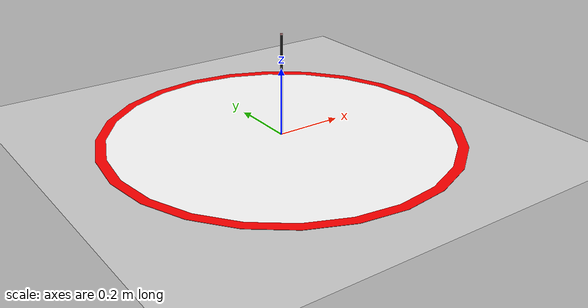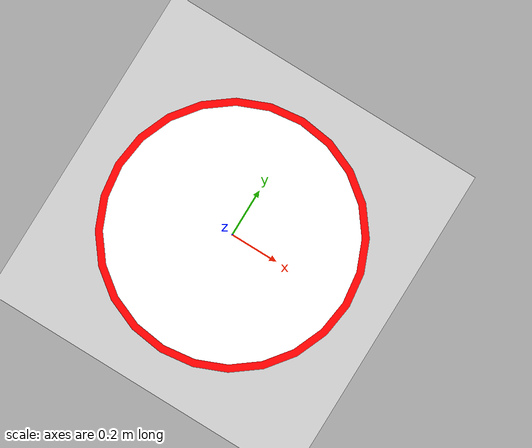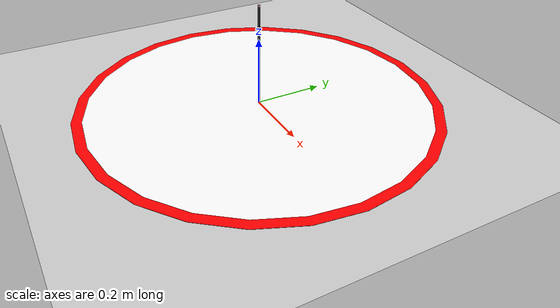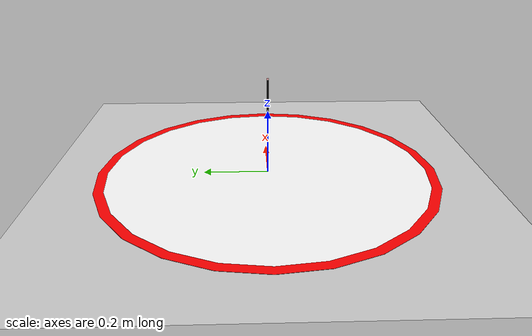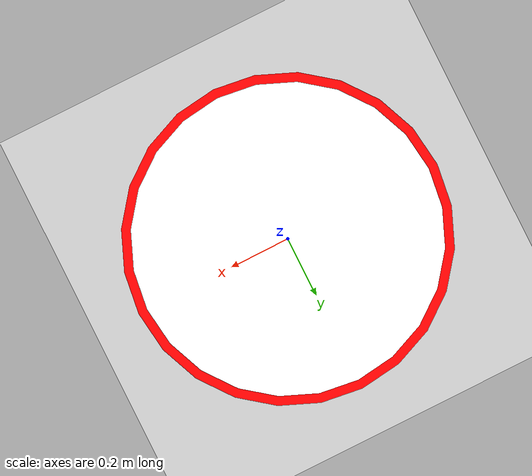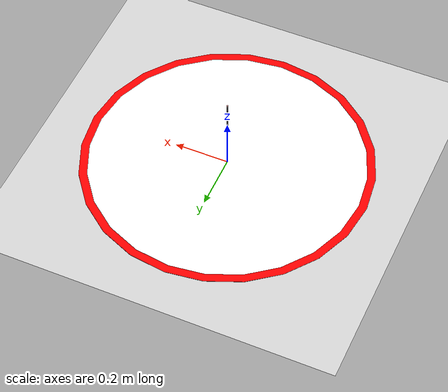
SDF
<sdf version="1.4">
 <world name="world_camera_calibration">
  <plugin filename="gz-sim-physics-system" name="gz::sim::systems::Physics"/>
  <plugin filename="gz-sim-sensors-system" name="gz::sim::systems::Sensors">
   <render_engine>ogre2</render_engine>
  </plugin>
  <plugin filename="gz-sim-scene-broadcaster-system" name="gz::sim::systems::SceneBroadcaster"/>
  <plugin filename="gz-sim-user-commands-system" name="gz::sim::systems::UserCommands"/>
  <include><uri>model://sun</uri></include>
  <model name="plane">
   <static>true</static>
   <self_collide>true</self_collide>
   <include merge="true"><uri>model://ground_plane</uri></include>
  </model>
  <model name="camera">
   <static>true</static>
   <self_collide>true</self_collide>
   <pose relative_to="plane">0 0 0.3 0 0 3.141592653589793</pose>
   <include merge="true"><uri>model://camera</uri></include>
  </model>
  <model name="base_camera">
   <static>true</static>
   <include merge="true"><uri>model://point</uri></include>
  </model>
  <model name="pedestal">
   <link name="link">
    <pose>0 0 0.14875 0 0 0</pose>
    <visual name="visual">
     <geometry><box><size>0.005 0.005 0.2975</size></box></geometry>
     <material><ambient>0 0 0 1</ambient><diffuse>0 0 0 1</diffuse><specular>0 0 0 1</specular></material>
    </visual>
    <collision name="collision"><geometry><box><size>0.005 0.005 0.2975</size></box></geometry></collision>
   </link>
   <static>1</static>
  </model>
 </world>
</sdf>

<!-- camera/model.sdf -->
<sdf version="1.8">
  <model name="camera">
    <link name="camera_link">
      <pose relative_to='__model__'>0 0 0 0 0 3.1415926535897931</pose>
      <inertial>
        <mass>0.001</mass> <!-- Ajuste a massa conforme necessário -->
        <inertia>
          <ixx>1.0E-06</ixx>
          <iyy>1.0E-06</iyy>
          <izz>1.0E-06</izz>
        </inertia>
      </inertial>
      <collision name="collision">
        <geometry>
          <box>
            <size>0.005 0.005 0.005</size>
          </box>
        </geometry>
      </collision>
      <visual name="visual">
        <geometry>
          <box>
            <size>0.005 0.005 0.005</size>
          </box>
        </geometry>
        <material>
          <ambient>1 0.5 0.5 1</ambient>
          <diffuse>1 0.7 0.7 1</diffuse>
          <specular>1 0.2 0.2 1</specular>
        </material>
      </visual>
      <sensor name="camera" type="camera">
        <camera>
          <horizontal_fov>1.047</horizontal_fov>
          <image>
            <width>640</width>
            <height>480</height>
          </image>
          <clip>
            <near>0.1</near>
            <far>100</far>
          </clip>
        </camera>
        <always_on>1</always_on>
        <update_rate>60</update_rate>
        <visualize>true</visualize>
        <enable_metrics>true</enable_metrics>
        <topic>/camera</topic>
      </sensor>
    </link>
  </model>
</sdf>

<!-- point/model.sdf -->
<sdf version="1.8">
  <model name="point">
    <static>true</static>
    <pose>0 0 0.001 0 0 0</pose>
    <link name="point_link">
      <inertial>
        <mass>0.001</mass> <!-- Ajuste a massa conforme necessário -->
        <inertia>
          <ixx>1.0E-06</ixx>
          <iyy>1.0E-06</iyy>
          <izz>1.0E-06</izz>
        </inertia>
      </inertial>
      <collision name="collision">
        <geometry>
          <cylinder>
            <radius>0.33</radius> <!-- Raio total incluindo a borda -->
            <length>0.0009</length> <!-- Altura muito pequena -->
          </cylinder>
        </geometry>
      </collision>
      <!-- Cilindro externo (borda vermelha) -->
      <visual name='visual_border'>
        <geometry>
          <cylinder>
            <radius>0.53</radius> <!-- Raio total incluindo a borda -->
            <length>0.0009</length> <!-- Altura muito pequena -->
          </cylinder>
        </geometry>
        <material>
          <ambient>1 0 0 1</ambient> <!-- Cor vermelha -->
          <diffuse>1 0 0 1</diffuse>
          <specular>1 0 0 1</specular>
        </material>
      </visual>

      <!-- Cilindro interno (centro branco) -->
      <visual name='visual_center'>
        <geometry>
          <cylinder>
            <radius>0.5</radius> <!-- Raio do centro branco -->
            <length>0.001</length> <!-- Altura muito pequena -->
          </cylinder>
        </geometry>
        <material>
          <ambient>1 1 1 1</ambient> <!-- Cor branca -->
          <diffuse>1 1 1 1</diffuse>
          <specular>1 1 1 1</specular>
        </material>
      </visual>

    </link>
  </model>
</sdf>
